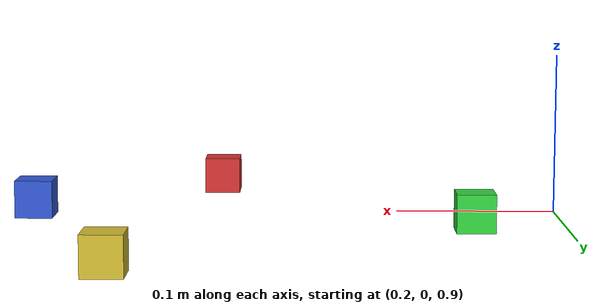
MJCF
<mujoco model="obj_blocks">

    <worldbody>
        <!-- Blocks: 2.5cm cubed (25mm x 25mm x 25mm).
             friction 1.5 and stiffer solref improve gripper grasp (less slip).
             condim=4: full friction cone with torsion. -->
        <body name="body_obj_block_1" pos="0.42 -0.16 0.90" euler="0 0 0">
            <joint type="free" damping="0.1" armature="0.001" />
            <geom type="box" size="0.0125 0.0125 0.0125" rgba="0.85 0.2 0.2 1" contype="1" conaffinity="1" condim="4" friction="1.5 0.01 0.002" solref="0.01 1" solimp="0.92 0.97 0.001" margin="0.0005" gap="0" />
            <inertial pos="0 0 0" mass="0.03" diaginertia="0.0000031 0.0000031 0.0000031" />
        </body>

        <body name="body_obj_block_2" pos="0.54 -0.05 0.90" euler="0 0 0">
            <joint type="free" damping="0.1" armature="0.001" />
            <geom type="box" size="0.0125 0.0125 0.0125" rgba="0.2 0.35 0.85 1" contype="1" conaffinity="1" condim="4" friction="1.5 0.01 0.002" solref="0.01 1" solimp="0.92 0.97 0.001" margin="0.0005" gap="0" />
            <inertial pos="0 0 0" mass="0.025" diaginertia="0.0000026 0.0000026 0.0000026" />
        </body>

        <body name="body_obj_block_3" pos="0.25 0.0 0.90" euler="0 0 0">
            <joint type="free" damping="0.1" armature="0.001" />
            <geom type="box" size="0.0125 0.0125 0.0125" rgba="0.2 0.85 0.25 1" contype="1" conaffinity="1" condim="4" friction="1.5 0.01 0.002" solref="0.01 1" solimp="0.92 0.97 0.001" margin="0.0005" gap="0" />
            <inertial pos="0 0 0" mass="0.025" diaginertia="0.0000026 0.0000026 0.0000026" />
        </body>

        <body name="body_obj_block_4" pos="0.47 0.14 0.90" euler="0 0 0">
            <joint type="free" damping="0.1" armature="0.001" />
            <geom type="box" size="0.0125 0.0125 0.0125" rgba="0.85 0.75 0.2 1" contype="1" conaffinity="1" condim="4" friction="1.5 0.01 0.002" solref="0.01 1" solimp="0.92 0.97 0.001" margin="0.0005" gap="0" />
            <inertial pos="0 0 0" mass="0.018" diaginertia="0.0000019 0.0000019 0.0000019" />
        </body>

    </worldbody>
</mujoco>
